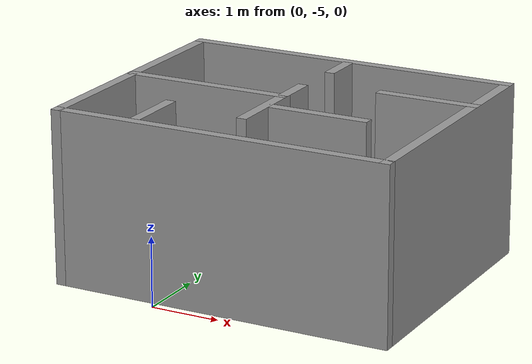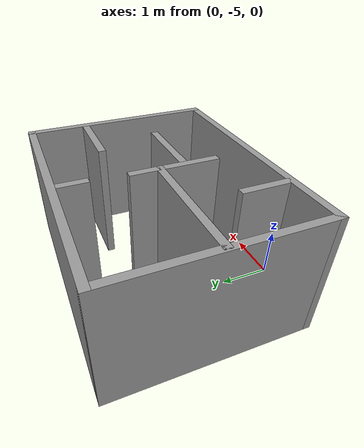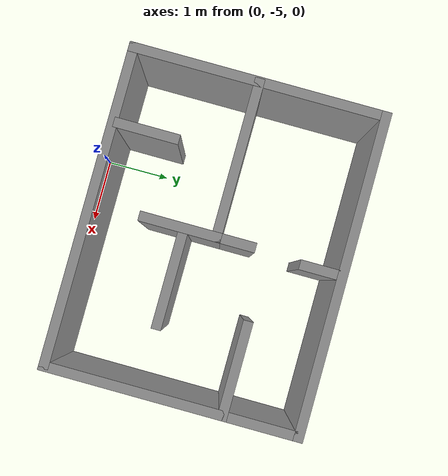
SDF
<?xml version='1.0'?>
<sdf version='1.7'>
  <model name='small_house'>
    <pose>0.905 -2.4425 0 0 -0 0</pose>

    <link name='Wall_0'>
      <collision name='Wall_0_Collision'>
        <geometry>
          <box>
            <size>5 0.15 2.5</size>
          </box>
        </geometry>
        <pose>0 0 1.25 0 -0 0</pose>
      </collision>
      <visual name='Wall_0_Visual'>
        <pose>0 0 1.25 0 -0 0</pose>
        <geometry>
          <box>
            <size>5 0.15 2.5</size>
          </box>
        </geometry>
        <material>
          <script>
            <uri>file://media/materials/scripts/gazebo.material</uri>
            <name>Gazebo/Grey</name>
          </script>
          <ambient>1 1 1 1</ambient>
        </material>
        <meta>
          <layer>0</layer>
        </meta>
      </visual>
      <pose>0 1.4825 0 0 -0 0</pose>
    </link>
    <link name='Wall_1'>
      <collision name='Wall_1_Collision'>
        <geometry>
          <box>
            <size>4 0.15 2.5</size>
          </box>
        </geometry>
        <pose>0 0 1.25 0 -0 0</pose>
      </collision>
      <visual name='Wall_1_Visual'>
        <pose>0 0 1.25 0 -0 0</pose>
        <geometry>
          <box>
            <size>4 0.15 2.5</size>
          </box>
        </geometry>
        <material>
          <script>
            <uri>file://media/materials/scripts/gazebo.material</uri>
            <name>Gazebo/Grey</name>
          </script>
          <ambient>1 1 1 1</ambient>
        </material>
        <meta>
          <layer>0</layer>
        </meta>
      </visual>
      <pose>2.425 -0.4425 0 0 -0 -1.5708</pose>
    </link>
    <link name='Wall_10'>
      <collision name='Wall_10_Collision'>
        <geometry>
          <box>
            <size>1.5 0.15 2.5</size>
          </box>
        </geometry>
        <pose>0 0 1.25 0 -0 0</pose>
      </collision>
      <visual name='Wall_10_Visual'>
        <pose>0 0 1.25 0 -0 0</pose>
        <geometry>
          <box>
            <size>1.5 0.15 2.5</size>
          </box>
        </geometry>
        <material>
          <script>
            <uri>file://media/materials/scripts/gazebo.material</uri>
            <name>Gazebo/Grey</name>
          </script>
          <ambient>1 1 1 1</ambient>
        </material>
        <meta>
          <layer>0</layer>
        </meta>
      </visual>
      <pose>1.75 0.3325 0 0 -0 3.14159</pose>
    </link>
    <link name='Wall_12'>
      <collision name='Wall_12_Collision'>
        <geometry>
          <box>
            <size>1.25 0.15 2.5</size>
          </box>
        </geometry>
        <pose>0 0 1.25 0 -0 0</pose>
      </collision>
      <visual name='Wall_12_Visual'>
        <pose>0 0 1.25 0 -0 0</pose>
        <geometry>
          <box>
            <size>1.25 0.15 2.5</size>
          </box>
        </geometry>
        <material>
          <script>
            <uri>file://media/materials/scripts/gazebo.material</uri>
            <name>Gazebo/Grey</name>
          </script>
          <ambient>1 1 1 1</ambient>
        </material>
        <meta>
          <layer>0</layer>
        </meta>
      </visual>
      <pose>-0.055 -0.9975 0 0 -0 -1.5708</pose>
    </link>
    <link name='Wall_14'>
      <collision name='Wall_14_Collision'>
        <geometry>
          <box>
            <size>1 0.15 2.5</size>
          </box>
        </geometry>
        <pose>0 0 1.25 0 -0 0</pose>
      </collision>
      <visual name='Wall_14_Visual'>
        <pose>0 0 1.25 0 -0 0</pose>
        <geometry>
          <box>
            <size>1 0.15 2.5</size>
          </box>
        </geometry>
        <material>
          <script>
            <uri>file://media/materials/scripts/gazebo.material</uri>
            <name>Gazebo/Grey</name>
          </script>
          <ambient>1 1 1 1</ambient>
        </material>
        <meta>
          <layer>0</layer>
        </meta>
      </visual>
      <pose>-1.285 -1.8525 0 0 -0 -1.5708</pose>
    </link>
    <link name='Wall_16'>
      <collision name='Wall_16_Collision'>
        <geometry>
          <box>
            <size>1.5 0.15 2.5</size>
          </box>
        </geometry>
        <pose>0 0 1.25 0 -0 0</pose>
      </collision>
      <visual name='Wall_16_Visual'>
        <pose>0 0 1.25 0 -0 0</pose>
        <geometry>
          <box>
            <size>1.5 0.15 2.5</size>
          </box>
        </geometry>
        <material>
          <script>
            <uri>file://media/materials/scripts/gazebo.material</uri>
            <name>Gazebo/Grey</name>
          </script>
          <ambient>1 1 1 1</ambient>
        </material>
        <meta>
          <layer>0</layer>
        </meta>
      </visual>
      <pose>0.73 -0.9375 0 0 -0 0</pose>
    </link>
    <link name='Wall_2'>
      <collision name='Wall_2_Collision'>
        <geometry>
          <box>
            <size>5 0.15 2.5</size>
          </box>
        </geometry>
        <pose>0 0 1.25 0 -0 0</pose>
      </collision>
      <visual name='Wall_2_Visual'>
        <pose>0 0 1.25 0 -0 0</pose>
        <geometry>
          <box>
            <size>5 0.15 2.5</size>
          </box>
        </geometry>
        <material>
          <script>
            <uri>file://media/materials/scripts/gazebo.material</uri>
            <name>Gazebo/Grey</name>
          </script>
          <ambient>1 1 1 1</ambient>
        </material>
        <meta>
          <layer>0</layer>
        </meta>
      </visual>
      <pose>0 -2.3675 0 0 -0 3.14159</pose>
    </link>
    <link name='Wall_3'>
      <collision name='Wall_3_Collision'>
        <geometry>
          <box>
            <size>4 0.15 2.5</size>
          </box>
        </geometry>
        <pose>0 0 1.25 0 -0 0</pose>
      </collision>
      <visual name='Wall_3_Visual'>
        <pose>0 0 1.25 0 -0 0</pose>
        <geometry>
          <box>
            <size>4 0.15 2.5</size>
          </box>
        </geometry>
        <material>
          <script>
            <uri>file://media/materials/scripts/gazebo.material</uri>
            <name>Gazebo/Grey</name>
          </script>
          <ambient>1 1 1 1</ambient>
        </material>
        <meta>
          <layer>0</layer>
        </meta>
      </visual>
      <pose>-2.425 -0.4425 0 0 -0 1.5708</pose>
    </link>
    <link name='Wall_5'>
      <collision name='Wall_5_Collision'>
        <geometry>
          <box>
            <size>2.5 0.15 2.5</size>
          </box>
        </geometry>
        <pose>0 0 1.25 0 -0 0</pose>
      </collision>
      <visual name='Wall_5_Visual'>
        <pose>0 0 1.25 0 -0 0</pose>
        <geometry>
          <box>
            <size>2.5 0.15 2.5</size>
          </box>
        </geometry>
        <material>
          <script>
            <uri>file://media/materials/scripts/gazebo.material</uri>
            <name>Gazebo/Grey</name>
          </script>
          <ambient>1 1 1 1</ambient>
        </material>
        <meta>
          <layer>0</layer>
        </meta>
      </visual>
      <pose>-1.23 -0.4475 0 0 -0 0</pose>
    </link>
    <link name='Wall_6'>
      <collision name='Wall_6_Collision'>
        <geometry>
          <box>
            <size>0.6 0.15 2.5</size>
          </box>
        </geometry>
        <pose>0 0 1.25 0 -0 0</pose>
      </collision>
      <visual name='Wall_6_Visual'>
        <pose>0 0 1.25 0 -0 0</pose>
        <geometry>
          <box>
            <size>0.6 0.15 2.5</size>
          </box>
        </geometry>
        <material>
          <script>
            <uri>file://media/materials/scripts/gazebo.material</uri>
            <name>Gazebo/Grey</name>
          </script>
          <ambient>1 1 1 1</ambient>
        </material>
        <meta>
          <layer>0</layer>
        </meta>
      </visual>
      <pose>-0.055 -0.1475 0 0 -0 1.5708</pose>
    </link>
    <link name='Wall_8'>
      <collision name='Wall_8_Collision'>
        <geometry>
          <box>
            <size>0.6 0.15 2.5</size>
          </box>
        </geometry>
        <pose>0 0 1.25 0 -0 0</pose>
      </collision>
      <visual name='Wall_8_Visual'>
        <pose>0 0 1.25 0 -0 0</pose>
        <geometry>
          <box>
            <size>0.6 0.15 2.5</size>
          </box>
        </geometry>
        <material>
          <script>
            <uri>file://media/materials/scripts/gazebo.material</uri>
            <name>Gazebo/Grey</name>
          </script>
          <ambient>1 1 1 1</ambient>
        </material>
        <meta>
          <layer>0</layer>
        </meta>
      </visual>
      <pose>0.005 1.1325 0 0 -0 -1.5708</pose>
    </link>
    <static>1</static>
  </model>
</sdf>
